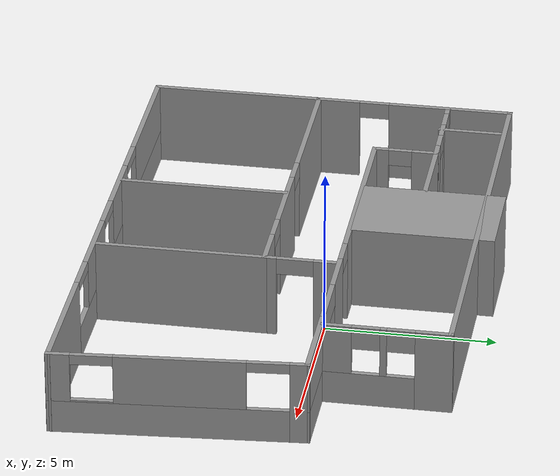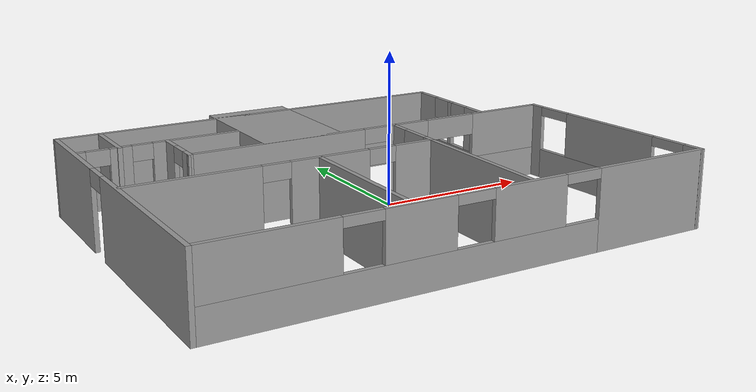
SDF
<?xml version='1.0'?>
<sdf version='1.6'>
  <model name='Building'>
    <pose frame=''>-1.32322 -1.01711 0 0 -0 0</pose>
    <link name='Wall_100'>
      <collision name='Wall_100_Collision'>
        <geometry>
          <box>
            <size>4.3 2.7 2.5</size>
          </box>
        </geometry>
        <pose frame=''>0 0 1.25 0 -0 0</pose>
      </collision>
      <visual name='Wall_100_Visual'>
        <pose frame=''>0 0 1.25 0 -0 0</pose>
        <geometry>
          <box>
            <size>4.3 2.7 2.5</size>
          </box>
        </geometry>
        <material>
          <script>
            <uri>file://media/materials/scripts/gazebo.material</uri>
            <name>Gazebo/Grey</name>
          </script>
          <ambient>1 1 1 1</ambient>
        </material>
        <meta>
          <layer>0</layer>
        </meta>
      </visual>
      <pose frame=''>-1.48764 3.58577 0 0 0 -1.5708</pose>
    </link>
    <link name='Wall_40'>
      <pose frame=''>-8.07936 -0.23025 0 0 0 -1.5708</pose>
      <visual name='Wall_40_Visual_0'>
        <pose frame=''>-3.61824 0 1.25 0 -0 0</pose>
        <geometry>
          <box>
            <size>3.76351 0.15 2.5</size>
          </box>
        </geometry>
        <material>
          <script>
            <uri>file://media/materials/scripts/gazebo.material</uri>
            <name>Gazebo/Grey</name>
          </script>
          <ambient>1 1 1 1</ambient>
        </material>
        <meta>
          <layer>0</layer>
        </meta>
      </visual>
      <collision name='Wall_40_Collision_0'>
        <geometry>
          <box>
            <size>3.76351 0.15 2.5</size>
          </box>
        </geometry>
        <pose frame=''>-3.61824 0 1.25 0 -0 0</pose>
      </collision>
      <visual name='Wall_40_Visual_1'>
        <pose frame=''>2.33175 0 1.25 0 -0 0</pose>
        <geometry>
          <box>
            <size>6.33649 0.15 2.5</size>
          </box>
        </geometry>
        <material>
          <script>
            <uri>file://media/materials/scripts/gazebo.material</uri>
            <name>Gazebo/Grey</name>
          </script>
          <ambient>1 1 1 1</ambient>
        </material>
        <meta>
          <layer>0</layer>
        </meta>
      </visual>
      <collision name='Wall_40_Collision_1'>
        <geometry>
          <box>
            <size>6.33649 0.15 2.5</size>
          </box>
        </geometry>
        <pose frame=''>2.33175 0 1.25 0 -0 0</pose>
      </collision>
      <visual name='Wall_40_Visual_2'>
        <pose frame=''>-1.28649 0 2.25 0 -0 0</pose>
        <geometry>
          <box>
            <size>0.9 0.15 0.5</size>
          </box>
        </geometry>
        <material>
          <script>
            <uri>file://media/materials/scripts/gazebo.material</uri>
            <name>Gazebo/Grey</name>
          </script>
          <ambient>1 1 1 1</ambient>
        </material>
        <meta>
          <layer>0</layer>
        </meta>
      </visual>
      <collision name='Wall_40_Collision_2'>
        <geometry>
          <box>
            <size>0.9 0.15 0.5</size>
          </box>
        </geometry>
        <pose frame=''>-1.28649 0 2.25 0 -0 0</pose>
      </collision>
    </link>
    <link name='Wall_47'>
      <collision name='Wall_47_Collision'>
        <geometry>
          <box>
            <size>13.5 0.15 2.5</size>
          </box>
        </geometry>
        <pose frame=''>0 0 1.25 0 -0 0</pose>
      </collision>
      <visual name='Wall_47_Visual'>
        <pose frame=''>0 0 1.25 0 -0 0</pose>
        <geometry>
          <box>
            <size>13.5 0.15 2.5</size>
          </box>
        </geometry>
        <material>
          <script>
            <uri>file://media/materials/scripts/gazebo.material</uri>
            <name>Gazebo/Grey</name>
          </script>
          <ambient>1 1 1 1</ambient>
        </material>
        <meta>
          <layer>0</layer>
        </meta>
      </visual>
      <pose frame=''>-1.40436 5.19475 0 0 -0 0</pose>
    </link>
    <link name='Wall_49'>
      <pose frame=''>5.27064 3.39475 0 0 0 -1.5708</pose>
      <visual name='Wall_49_Visual_0'>
        <pose frame=''>-1.33629 0 1.25 0 -0 0</pose>
        <geometry>
          <box>
            <size>1.07742 0.15 2.5</size>
          </box>
        </geometry>
        <material>
          <script>
            <uri>file://media/materials/scripts/gazebo.material</uri>
            <name>Gazebo/Grey</name>
          </script>
          <ambient>1 1 1 1</ambient>
        </material>
        <meta>
          <layer>0</layer>
        </meta>
      </visual>
      <collision name='Wall_49_Collision_0'>
        <geometry>
          <box>
            <size>1.07742 0.15 2.5</size>
          </box>
        </geometry>
        <pose frame=''>-1.33629 0 1.25 0 -0 0</pose>
      </collision>
      <visual name='Wall_49_Visual_1'>
        <pose frame=''>0.538709 0 0.5 0 -0 0</pose>
        <geometry>
          <box>
            <size>2.67258 0.15 1</size>
          </box>
        </geometry>
        <material>
          <script>
            <uri>file://media/materials/scripts/gazebo.material</uri>
            <name>Gazebo/Grey</name>
          </script>
          <ambient>1 1 1 1</ambient>
        </material>
        <meta>
          <layer>0</layer>
        </meta>
      </visual>
      <collision name='Wall_49_Collision_1'>
        <geometry>
          <box>
            <size>2.67258 0.15 1</size>
          </box>
        </geometry>
        <pose frame=''>0.538709 0 0.5 0 -0 0</pose>
      </collision>
      <visual name='Wall_49_Visual_2'>
        <pose frame=''>0.097651 0 1.75 0 -0 0</pose>
        <geometry>
          <box>
            <size>0.190465 0.15 1.5</size>
          </box>
        </geometry>
        <material>
          <script>
            <uri>file://media/materials/scripts/gazebo.material</uri>
            <name>Gazebo/Grey</name>
          </script>
          <ambient>1 1 1 1</ambient>
        </material>
        <meta>
          <layer>0</layer>
        </meta>
      </visual>
      <collision name='Wall_49_Collision_2'>
        <geometry>
          <box>
            <size>0.190465 0.15 1.5</size>
          </box>
        </geometry>
        <pose frame=''>0.097651 0 1.75 0 -0 0</pose>
      </collision>
      <visual name='Wall_49_Visual_3'>
        <pose frame=''>1.43394 0 1.75 0 -0 0</pose>
        <geometry>
          <box>
            <size>0.882117 0.15 1.5</size>
          </box>
        </geometry>
        <material>
          <script>
            <uri>file://media/materials/scripts/gazebo.material</uri>
            <name>Gazebo/Grey</name>
          </script>
          <ambient>1 1 1 1</ambient>
        </material>
        <meta>
          <layer>0</layer>
        </meta>
      </visual>
      <collision name='Wall_49_Collision_3'>
        <geometry>
          <box>
            <size>0.882117 0.15 1.5</size>
          </box>
        </geometry>
        <pose frame=''>1.43394 0 1.75 0 -0 0</pose>
      </collision>
      <visual name='Wall_49_Visual_4'>
        <pose frame=''>-0.397582 0 2.15 0 -0 0</pose>
        <geometry>
          <box>
            <size>0.8 0.15 0.7</size>
          </box>
        </geometry>
        <material>
          <script>
            <uri>file://media/materials/scripts/gazebo.material</uri>
            <name>Gazebo/Grey</name>
          </script>
          <ambient>1 1 1 1</ambient>
        </material>
        <meta>
          <layer>0</layer>
        </meta>
      </visual>
      <collision name='Wall_49_Collision_4'>
        <geometry>
          <box>
            <size>0.8 0.15 0.7</size>
          </box>
        </geometry>
        <pose frame=''>-0.397582 0 2.15 0 -0 0</pose>
      </collision>
      <visual name='Wall_49_Visual_5'>
        <pose frame=''>0.592883 0 2.15 0 -0 0</pose>
        <geometry>
          <box>
            <size>0.8 0.15 0.7</size>
          </box>
        </geometry>
        <material>
          <script>
            <uri>file://media/materials/scripts/gazebo.material</uri>
            <name>Gazebo/Grey</name>
          </script>
          <ambient>1 1 1 1</ambient>
        </material>
        <meta>
          <layer>0</layer>
        </meta>
      </visual>
      <collision name='Wall_49_Collision_5'>
        <geometry>
          <box>
            <size>0.8 0.15 0.7</size>
          </box>
        </geometry>
        <pose frame=''>0.592883 0 2.15 0 -0 0</pose>
      </collision>
    </link>
    <link name='Wall_54'>
      <pose frame=''>-0.002761 -5.65525 0 0 -0 3.14159</pose>
      <visual name='Wall_54_Visual_0'>
        <pose frame=''>-6.13829 0 1.25 0 -0 0</pose>
        <geometry>
          <box>
            <size>4.02662 0.15 2.5</size>
          </box>
        </geometry>
        <material>
          <script>
            <uri>file://media/materials/scripts/gazebo.material</uri>
            <name>Gazebo/Grey</name>
          </script>
          <ambient>1 1 1 1</ambient>
        </material>
        <meta>
          <layer>0</layer>
        </meta>
      </visual>
      <collision name='Wall_54_Collision_0'>
        <geometry>
          <box>
            <size>4.02662 0.15 2.5</size>
          </box>
        </geometry>
        <pose frame=''>-6.13829 0 1.25 0 -0 0</pose>
      </collision>
      <visual name='Wall_54_Visual_1'>
        <pose frame=''>2.01331 0 0.5 0 -0 0</pose>
        <geometry>
          <box>
            <size>12.2766 0.15 1</size>
          </box>
        </geometry>
        <material>
          <script>
            <uri>file://media/materials/scripts/gazebo.material</uri>
            <name>Gazebo/Grey</name>
          </script>
          <ambient>1 1 1 1</ambient>
        </material>
        <meta>
          <layer>0</layer>
        </meta>
      </visual>
      <collision name='Wall_54_Collision_1'>
        <geometry>
          <box>
            <size>12.2766 0.15 1</size>
          </box>
        </geometry>
        <pose frame=''>2.01331 0 0.5 0 -0 0</pose>
      </collision>
      <visual name='Wall_54_Visual_2'>
        <pose frame=''>-1.70444 0 1.75 0 -0 0</pose>
        <geometry>
          <box>
            <size>2.44108 0.15 1.5</size>
          </box>
        </geometry>
        <material>
          <script>
            <uri>file://media/materials/scripts/gazebo.material</uri>
            <name>Gazebo/Grey</name>
          </script>
          <ambient>1 1 1 1</ambient>
        </material>
        <meta>
          <layer>0</layer>
        </meta>
      </visual>
      <collision name='Wall_54_Collision_2'>
        <geometry>
          <box>
            <size>2.44108 0.15 1.5</size>
          </box>
        </geometry>
        <pose frame=''>-1.70444 0 1.75 0 -0 0</pose>
      </collision>
      <visual name='Wall_54_Visual_3'>
        <pose frame=''>1.81519 0 1.75 0 -0 0</pose>
        <geometry>
          <box>
            <size>2.19819 0.15 1.5</size>
          </box>
        </geometry>
        <material>
          <script>
            <uri>file://media/materials/scripts/gazebo.material</uri>
            <name>Gazebo/Grey</name>
          </script>
          <ambient>1 1 1 1</ambient>
        </material>
        <meta>
          <layer>0</layer>
        </meta>
      </visual>
      <collision name='Wall_54_Collision_3'>
        <geometry>
          <box>
            <size>2.19819 0.15 1.5</size>
          </box>
        </geometry>
        <pose frame=''>1.81519 0 1.75 0 -0 0</pose>
      </collision>
      <visual name='Wall_54_Visual_4'>
        <pose frame=''>6.13294 0 1.75 0 -0 0</pose>
        <geometry>
          <box>
            <size>4.03732 0.15 1.5</size>
          </box>
        </geometry>
        <material>
          <script>
            <uri>file://media/materials/scripts/gazebo.material</uri>
            <name>Gazebo/Grey</name>
          </script>
          <ambient>1 1 1 1</ambient>
        </material>
        <meta>
          <layer>0</layer>
        </meta>
      </visual>
      <collision name='Wall_54_Collision_4'>
        <geometry>
          <box>
            <size>4.03732 0.15 1.5</size>
          </box>
        </geometry>
        <pose frame=''>6.13294 0 1.75 0 -0 0</pose>
      </collision>
      <visual name='Wall_54_Visual_5'>
        <pose frame=''>-3.52498 0 2.35 0 -0 0</pose>
        <geometry>
          <box>
            <size>1.2 0.15 0.3</size>
          </box>
        </geometry>
        <material>
          <script>
            <uri>file://media/materials/scripts/gazebo.material</uri>
            <name>Gazebo/Grey</name>
          </script>
          <ambient>1 1 1 1</ambient>
        </material>
        <meta>
          <layer>0</layer>
        </meta>
      </visual>
      <collision name='Wall_54_Collision_5'>
        <geometry>
          <box>
            <size>1.2 0.15 0.3</size>
          </box>
        </geometry>
        <pose frame=''>-3.52498 0 2.35 0 -0 0</pose>
      </collision>
      <visual name='Wall_54_Visual_6'>
        <pose frame=''>0.116097 0 2.35 0 -0 0</pose>
        <geometry>
          <box>
            <size>1.2 0.15 0.3</size>
          </box>
        </geometry>
        <material>
          <script>
            <uri>file://media/materials/scripts/gazebo.material</uri>
            <name>Gazebo/Grey</name>
          </script>
          <ambient>1 1 1 1</ambient>
        </material>
        <meta>
          <layer>0</layer>
        </meta>
      </visual>
      <collision name='Wall_54_Collision_6'>
        <geometry>
          <box>
            <size>1.2 0.15 0.3</size>
          </box>
        </geometry>
        <pose frame=''>0.116097 0 2.35 0 -0 0</pose>
      </collision>
      <visual name='Wall_54_Visual_7'>
        <pose frame=''>3.51428 0 2.35 0 -0 0</pose>
        <geometry>
          <box>
            <size>1.2 0.15 0.3</size>
          </box>
        </geometry>
        <material>
          <script>
            <uri>file://media/materials/scripts/gazebo.material</uri>
            <name>Gazebo/Grey</name>
          </script>
          <ambient>1 1 1 1</ambient>
        </material>
        <meta>
          <layer>0</layer>
        </meta>
      </visual>
      <collision name='Wall_54_Collision_7'>
        <geometry>
          <box>
            <size>1.2 0.15 0.3</size>
          </box>
        </geometry>
        <pose frame=''>3.51428 0 2.35 0 -0 0</pose>
      </collision>
    </link>
    <link name='Wall_62'>
      <pose frame=''>-6.60165 3.32498 0 0 0 -3.13189</pose>
      <visual name='Wall_62_Visual_0'>
        <pose frame=''>-1.20265 0 1.25 0 -0 0</pose>
        <geometry>
          <box>
            <size>0.553995 0.15 2.5</size>
          </box>
        </geometry>
        <material>
          <script>
            <uri>file://media/materials/scripts/gazebo.material</uri>
            <name>Gazebo/Grey</name>
          </script>
          <ambient>1 1 1 1</ambient>
        </material>
        <meta>
          <layer>0</layer>
        </meta>
      </visual>
      <collision name='Wall_62_Collision_0'>
        <geometry>
          <box>
            <size>0.553995 0.15 2.5</size>
          </box>
        </geometry>
        <pose frame=''>-1.20265 0 1.25 0 -0 0</pose>
      </collision>
      <visual name='Wall_62_Visual_1'>
        <pose frame=''>0.073898 0 1.25 0 -0 0</pose>
        <geometry>
          <box>
            <size>0.684821 0.15 2.5</size>
          </box>
        </geometry>
        <material>
          <script>
            <uri>file://media/materials/scripts/gazebo.material</uri>
            <name>Gazebo/Grey</name>
          </script>
          <ambient>1 1 1 1</ambient>
        </material>
        <meta>
          <layer>0</layer>
        </meta>
      </visual>
      <collision name='Wall_62_Collision_1'>
        <geometry>
          <box>
            <size>0.684821 0.15 2.5</size>
          </box>
        </geometry>
        <pose frame=''>0.073898 0 1.25 0 -0 0</pose>
      </collision>
      <visual name='Wall_62_Visual_2'>
        <pose frame=''>1.31124 0 1.25 0 -0 0</pose>
        <geometry>
          <box>
            <size>0.336811 0.15 2.5</size>
          </box>
        </geometry>
        <material>
          <script>
            <uri>file://media/materials/scripts/gazebo.material</uri>
            <name>Gazebo/Grey</name>
          </script>
          <ambient>1 1 1 1</ambient>
        </material>
        <meta>
          <layer>0</layer>
        </meta>
      </visual>
      <collision name='Wall_62_Collision_2'>
        <geometry>
          <box>
            <size>0.336811 0.15 2.5</size>
          </box>
        </geometry>
        <pose frame=''>1.31124 0 1.25 0 -0 0</pose>
      </collision>
      <visual name='Wall_62_Visual_3'>
        <pose frame=''>-0.597083 0 2.25 0 -0 0</pose>
        <geometry>
          <box>
            <size>0.65714 0.15 0.5</size>
          </box>
        </geometry>
        <material>
          <script>
            <uri>file://media/materials/scripts/gazebo.material</uri>
            <name>Gazebo/Grey</name>
          </script>
          <ambient>1 1 1 1</ambient>
        </material>
        <meta>
          <layer>0</layer>
        </meta>
      </visual>
      <collision name='Wall_62_Collision_3'>
        <geometry>
          <box>
            <size>0.65714 0.15 0.5</size>
          </box>
        </geometry>
        <pose frame=''>-0.597083 0 2.25 0 -0 0</pose>
      </collision>
      <visual name='Wall_62_Visual_4'>
        <pose frame=''>0.779572 0 2.25 0 -0 0</pose>
        <geometry>
          <box>
            <size>0.726529 0.15 0.5</size>
          </box>
        </geometry>
        <material>
          <script>
            <uri>file://media/materials/scripts/gazebo.material</uri>
            <name>Gazebo/Grey</name>
          </script>
          <ambient>1 1 1 1</ambient>
        </material>
        <meta>
          <layer>0</layer>
        </meta>
      </visual>
      <collision name='Wall_62_Collision_4'>
        <geometry>
          <box>
            <size>0.726529 0.15 0.5</size>
          </box>
        </geometry>
        <pose frame=''>0.779572 0 2.25 0 -0 0</pose>
      </collision>
    </link>
    <link name='Wall_65'>
      <pose frame=''>-5.19707 2.41361 0 0 0 -1.5708</pose>
      <visual name='Wall_65_Visual_0'>
        <pose frame=''>-0.598058 0 1.25 0 -0 0</pose>
        <geometry>
          <box>
            <size>0.803885 0.15 2.5</size>
          </box>
        </geometry>
        <material>
          <script>
            <uri>file://media/materials/scripts/gazebo.material</uri>
            <name>Gazebo/Grey</name>
          </script>
          <ambient>1 1 1 1</ambient>
        </material>
        <meta>
          <layer>0</layer>
        </meta>
      </visual>
      <collision name='Wall_65_Collision_0'>
        <geometry>
          <box>
            <size>0.803885 0.15 2.5</size>
          </box>
        </geometry>
        <pose frame=''>-0.598058 0 1.25 0 -0 0</pose>
      </collision>
      <visual name='Wall_65_Visual_1'>
        <pose frame=''>0.747855 0 1.25 0 -0 0</pose>
        <geometry>
          <box>
            <size>0.504291 0.15 2.5</size>
          </box>
        </geometry>
        <material>
          <script>
            <uri>file://media/materials/scripts/gazebo.material</uri>
            <name>Gazebo/Grey</name>
          </script>
          <ambient>1 1 1 1</ambient>
        </material>
        <meta>
          <layer>0</layer>
        </meta>
      </visual>
      <collision name='Wall_65_Collision_1'>
        <geometry>
          <box>
            <size>0.504291 0.15 2.5</size>
          </box>
        </geometry>
        <pose frame=''>0.747855 0 1.25 0 -0 0</pose>
      </collision>
      <visual name='Wall_65_Visual_2'>
        <pose frame=''>0.149797 0 2.25 0 -0 0</pose>
        <geometry>
          <box>
            <size>0.691825 0.15 0.5</size>
          </box>
        </geometry>
        <material>
          <script>
            <uri>file://media/materials/scripts/gazebo.material</uri>
            <name>Gazebo/Grey</name>
          </script>
          <ambient>1 1 1 1</ambient>
        </material>
        <meta>
          <layer>0</layer>
        </meta>
      </visual>
      <collision name='Wall_65_Collision_2'>
        <geometry>
          <box>
            <size>0.691825 0.15 0.5</size>
          </box>
        </geometry>
        <pose frame=''>0.149797 0 2.25 0 -0 0</pose>
      </collision>
    </link>
    <link name='Wall_70'>
      <pose frame=''>7.7983 -2.06765 0 0 0 -1.49414</pose>
      <visual name='Wall_70_Visual_0'>
        <pose frame=''>-3.39164 0 1.25 0 -0 0</pose>
        <geometry>
          <box>
            <size>0.563048 0.15 2.5</size>
          </box>
        </geometry>
        <material>
          <script>
            <uri>file://media/materials/scripts/gazebo.material</uri>
            <name>Gazebo/Grey</name>
          </script>
          <ambient>1 1 1 1</ambient>
        </material>
        <meta>
          <layer>0</layer>
        </meta>
      </visual>
      <collision name='Wall_70_Collision_0'>
        <geometry>
          <box>
            <size>0.563048 0.15 2.5</size>
          </box>
        </geometry>
        <pose frame=''>-3.39164 0 1.25 0 -0 0</pose>
      </collision>
      <visual name='Wall_70_Visual_1'>
        <pose frame=''>0.281524 0 0.5 0 -0 0</pose>
        <geometry>
          <box>
            <size>6.78329 0.15 1</size>
          </box>
        </geometry>
        <material>
          <script>
            <uri>file://media/materials/scripts/gazebo.material</uri>
            <name>Gazebo/Grey</name>
          </script>
          <ambient>1 1 1 1</ambient>
        </material>
        <meta>
          <layer>0</layer>
        </meta>
      </visual>
      <collision name='Wall_70_Collision_1'>
        <geometry>
          <box>
            <size>6.78329 0.15 1</size>
          </box>
        </geometry>
        <pose frame=''>0.281524 0 0.5 0 -0 0</pose>
      </collision>
      <visual name='Wall_70_Visual_2'>
        <pose frame=''>-0.058851 0 1.75 0 -0 0</pose>
        <geometry>
          <box>
            <size>3.70254 0.15 1.5</size>
          </box>
        </geometry>
        <material>
          <script>
            <uri>file://media/materials/scripts/gazebo.material</uri>
            <name>Gazebo/Grey</name>
          </script>
          <ambient>1 1 1 1</ambient>
        </material>
        <meta>
          <layer>0</layer>
        </meta>
      </visual>
      <collision name='Wall_70_Collision_2'>
        <geometry>
          <box>
            <size>3.70254 0.15 1.5</size>
          </box>
        </geometry>
        <pose frame=''>-0.058851 0 1.75 0 -0 0</pose>
      </collision>
      <visual name='Wall_70_Visual_3'>
        <pose frame=''>3.33279 0 1.75 0 -0 0</pose>
        <geometry>
          <box>
            <size>0.68075 0.15 1.5</size>
          </box>
        </geometry>
        <material>
          <script>
            <uri>file://media/materials/scripts/gazebo.material</uri>
            <name>Gazebo/Grey</name>
          </script>
          <ambient>1 1 1 1</ambient>
        </material>
        <meta>
          <layer>0</layer>
        </meta>
      </visual>
      <collision name='Wall_70_Collision_3'>
        <geometry>
          <box>
            <size>0.68075 0.15 1.5</size>
          </box>
        </geometry>
        <pose frame=''>3.33279 0 1.75 0 -0 0</pose>
      </collision>
      <visual name='Wall_70_Visual_4'>
        <pose frame=''>2.39242 0 1 0 -0 0</pose>
        <geometry>
          <box>
            <size>1.2 0.15 0.1</size>
          </box>
        </geometry>
        <material>
          <script>
            <uri>file://media/materials/scripts/gazebo.material</uri>
            <name>Gazebo/Grey</name>
          </script>
          <ambient>1 1 1 1</ambient>
        </material>
        <meta>
          <layer>0</layer>
        </meta>
      </visual>
      <collision name='Wall_70_Collision_4'>
        <geometry>
          <box>
            <size>1.2 0.15 0.1</size>
          </box>
        </geometry>
        <pose frame=''>2.39242 0 1 0 -0 0</pose>
      </collision>
      <visual name='Wall_70_Visual_5'>
        <pose frame=''>-2.51012 0 2.35 0 -0 0</pose>
        <geometry>
          <box>
            <size>1.2 0.15 0.3</size>
          </box>
        </geometry>
        <material>
          <script>
            <uri>file://media/materials/scripts/gazebo.material</uri>
            <name>Gazebo/Grey</name>
          </script>
          <ambient>1 1 1 1</ambient>
        </material>
        <meta>
          <layer>0</layer>
        </meta>
      </visual>
      <collision name='Wall_70_Collision_5'>
        <geometry>
          <box>
            <size>1.2 0.15 0.3</size>
          </box>
        </geometry>
        <pose frame=''>-2.51012 0 2.35 0 -0 0</pose>
      </collision>
      <visual name='Wall_70_Visual_6'>
        <pose frame=''>2.39242 0 2.35 0 -0 0</pose>
        <geometry>
          <box>
            <size>1.2 0.15 0.3</size>
          </box>
        </geometry>
        <material>
          <script>
            <uri>file://media/materials/scripts/gazebo.material</uri>
            <name>Gazebo/Grey</name>
          </script>
          <ambient>1 1 1 1</ambient>
        </material>
        <meta>
          <layer>0</layer>
        </meta>
      </visual>
      <collision name='Wall_70_Collision_6'>
        <geometry>
          <box>
            <size>1.2 0.15 0.3</size>
          </box>
        </geometry>
        <pose frame=''>2.39242 0 2.35 0 -0 0</pose>
      </collision>
    </link>
    <link name='Wall_74'>
      <pose frame=''>-3.11721 -0.654815 0 0 -0 0</pose>
      <visual name='Wall_74_Visual_0'>
        <pose frame=''>-2.8962 0 1.25 0 -0 0</pose>
        <geometry>
          <box>
            <size>4.2076 0.15 2.5</size>
          </box>
        </geometry>
        <material>
          <script>
            <uri>file://media/materials/scripts/gazebo.material</uri>
            <name>Gazebo/Grey</name>
          </script>
          <ambient>1 1 1 1</ambient>
        </material>
        <meta>
          <layer>0</layer>
        </meta>
      </visual>
      <collision name='Wall_74_Collision_0'>
        <geometry>
          <box>
            <size>4.2076 0.15 2.5</size>
          </box>
        </geometry>
        <pose frame=''>-2.8962 0 1.25 0 -0 0</pose>
      </collision>
      <visual name='Wall_74_Visual_1'>
        <pose frame=''>1.40494 0 1.25 0 -0 0</pose>
        <geometry>
          <box>
            <size>2.59468 0.15 2.5</size>
          </box>
        </geometry>
        <material>
          <script>
            <uri>file://media/materials/scripts/gazebo.material</uri>
            <name>Gazebo/Grey</name>
          </script>
          <ambient>1 1 1 1</ambient>
        </material>
        <meta>
          <layer>0</layer>
        </meta>
      </visual>
      <collision name='Wall_74_Collision_1'>
        <geometry>
          <box>
            <size>2.59468 0.15 2.5</size>
          </box>
        </geometry>
        <pose frame=''>1.40494 0 1.25 0 -0 0</pose>
      </collision>
      <visual name='Wall_74_Visual_2'>
        <pose frame=''>4.30114 0 1.25 0 -0 0</pose>
        <geometry>
          <box>
            <size>1.39772 0.15 2.5</size>
          </box>
        </geometry>
        <material>
          <script>
            <uri>file://media/materials/scripts/gazebo.material</uri>
            <name>Gazebo/Grey</name>
          </script>
          <ambient>1 1 1 1</ambient>
        </material>
        <meta>
          <layer>0</layer>
        </meta>
      </visual>
      <collision name='Wall_74_Collision_2'>
        <geometry>
          <box>
            <size>1.39772 0.15 2.5</size>
          </box>
        </geometry>
        <pose frame=''>4.30114 0 1.25 0 -0 0</pose>
      </collision>
      <visual name='Wall_74_Visual_3'>
        <pose frame=''>-0.342396 0 2.25 0 -0 0</pose>
        <geometry>
          <box>
            <size>0.9 0.15 0.5</size>
          </box>
        </geometry>
        <material>
          <script>
            <uri>file://media/materials/scripts/gazebo.material</uri>
            <name>Gazebo/Grey</name>
          </script>
          <ambient>1 1 1 1</ambient>
        </material>
        <meta>
          <layer>0</layer>
        </meta>
      </visual>
      <collision name='Wall_74_Collision_3'>
        <geometry>
          <box>
            <size>0.9 0.15 0.5</size>
          </box>
        </geometry>
        <pose frame=''>-0.342396 0 2.25 0 -0 0</pose>
      </collision>
      <visual name='Wall_74_Visual_4'>
        <pose frame=''>3.15228 0 2.25 0 -0 0</pose>
        <geometry>
          <box>
            <size>0.9 0.15 0.5</size>
          </box>
        </geometry>
        <material>
          <script>
            <uri>file://media/materials/scripts/gazebo.material</uri>
            <name>Gazebo/Grey</name>
          </script>
          <ambient>1 1 1 1</ambient>
        </material>
        <meta>
          <layer>0</layer>
        </meta>
      </visual>
      <collision name='Wall_74_Collision_4'>
        <geometry>
          <box>
            <size>0.9 0.15 0.5</size>
          </box>
        </geometry>
        <pose frame=''>3.15228 0 2.25 0 -0 0</pose>
      </collision>
    </link>
    <link name='Wall_75'>
      <collision name='Wall_75_Collision'>
        <geometry>
          <box>
            <size>5 0.15 2.5</size>
          </box>
        </geometry>
        <pose frame=''>0 0 1.25 0 -0 0</pose>
      </collision>
      <visual name='Wall_75_Visual'>
        <pose frame=''>0 0 1.25 0 -0 0</pose>
        <geometry>
          <box>
            <size>5 0.15 2.5</size>
          </box>
        </geometry>
        <material>
          <script>
            <uri>file://media/materials/scripts/gazebo.material</uri>
            <name>Gazebo/Grey</name>
          </script>
          <ambient>1 1 1 1</ambient>
        </material>
        <meta>
          <layer>0</layer>
        </meta>
      </visual>
      <pose frame=''>1.80779 -3.07981 0 0 0 -1.5708</pose>
    </link>
    <link name='Wall_79'>
      <collision name='Wall_79_Collision'>
        <geometry>
          <box>
            <size>5 0.15 2.5</size>
          </box>
        </geometry>
        <pose frame=''>0 0 1.25 0 -0 0</pose>
      </collision>
      <visual name='Wall_79_Visual'>
        <pose frame=''>0 0 1.25 0 -0 0</pose>
        <geometry>
          <box>
            <size>5 0.15 2.5</size>
          </box>
        </geometry>
        <material>
          <script>
            <uri>file://media/materials/scripts/gazebo.material</uri>
            <name>Gazebo/Grey</name>
          </script>
          <ambient>1 1 1 1</ambient>
        </material>
        <meta>
          <layer>0</layer>
        </meta>
      </visual>
      <pose frame=''>-2.05138 -3.12608 0 0 0 -1.5708</pose>
    </link>
    <link name='Wall_83'>
      <collision name='Wall_83_Collision'>
        <geometry>
          <box>
            <size>2 0.15 2.5</size>
          </box>
        </geometry>
        <pose frame=''>0 0 1.25 0 -0 0</pose>
      </collision>
      <visual name='Wall_83_Visual'>
        <pose frame=''>0 0 1.25 0 -0 0</pose>
        <geometry>
          <box>
            <size>2 0.15 2.5</size>
          </box>
        </geometry>
        <material>
          <script>
            <uri>file://media/materials/scripts/gazebo.material</uri>
            <name>Gazebo/Grey</name>
          </script>
          <ambient>1 1 1 1</ambient>
        </material>
        <meta>
          <layer>0</layer>
        </meta>
      </visual>
      <pose frame=''>-6.72313 4.20134 0 0 0 -1.5708</pose>
    </link>
    <link name='Wall_85'>
      <collision name='Wall_85_Collision'>
        <geometry>
          <box>
            <size>2.5 0.15 2.5</size>
          </box>
        </geometry>
        <pose frame=''>0 0 1.25 0 -0 0</pose>
      </collision>
      <visual name='Wall_85_Visual'>
        <pose frame=''>0 0 1.25 0 -0 0</pose>
        <geometry>
          <box>
            <size>2.5 0.15 2.5</size>
          </box>
        </geometry>
        <material>
          <script>
            <uri>file://media/materials/scripts/gazebo.material</uri>
            <name>Gazebo/Grey</name>
          </script>
          <ambient>1 1 1 1</ambient>
        </material>
        <meta>
          <layer>0</layer>
        </meta>
      </visual>
      <pose frame=''>-4.02207 3.33861 0 0 -0 0</pose>
    </link>
    <link name='Wall_89'>
      <pose frame=''>1.80779 0.395185 0 0 -0 1.5708</pose>
      <visual name='Wall_89_Visual_0'>
        <pose frame=''>-0.9132 0 1.25 0 -0 0</pose>
        <geometry>
          <box>
            <size>0.423601 0.15 2.5</size>
          </box>
        </geometry>
        <material>
          <script>
            <uri>file://media/materials/scripts/gazebo.material</uri>
            <name>Gazebo/Grey</name>
          </script>
          <ambient>1 1 1 1</ambient>
        </material>
        <meta>
          <layer>0</layer>
        </meta>
      </visual>
      <collision name='Wall_89_Collision_0'>
        <geometry>
          <box>
            <size>0.423601 0.15 2.5</size>
          </box>
        </geometry>
        <pose frame=''>-0.9132 0 1.25 0 -0 0</pose>
      </collision>
      <visual name='Wall_89_Visual_1'>
        <pose frame=''>0.749251 0 1.25 0 -0 0</pose>
        <geometry>
          <box>
            <size>0.751499 0.15 2.5</size>
          </box>
        </geometry>
        <material>
          <script>
            <uri>file://media/materials/scripts/gazebo.material</uri>
            <name>Gazebo/Grey</name>
          </script>
          <ambient>1 1 1 1</ambient>
        </material>
        <meta>
          <layer>0</layer>
        </meta>
      </visual>
      <collision name='Wall_89_Collision_1'>
        <geometry>
          <box>
            <size>0.751499 0.15 2.5</size>
          </box>
        </geometry>
        <pose frame=''>0.749251 0 1.25 0 -0 0</pose>
      </collision>
      <visual name='Wall_89_Visual_2'>
        <pose frame=''>-0.163949 0 2.25 0 -0 0</pose>
        <geometry>
          <box>
            <size>1.0749 0.15 0.5</size>
          </box>
        </geometry>
        <material>
          <script>
            <uri>file://media/materials/scripts/gazebo.material</uri>
            <name>Gazebo/Grey</name>
          </script>
          <ambient>1 1 1 1</ambient>
        </material>
        <meta>
          <layer>0</layer>
        </meta>
      </visual>
      <collision name='Wall_89_Collision_2'>
        <geometry>
          <box>
            <size>1.0749 0.15 0.5</size>
          </box>
        </geometry>
        <pose frame=''>-0.163949 0 2.25 0 -0 0</pose>
      </collision>
    </link>
    <link name='Wall_97'>
      <pose frame=''>1.16285 1.50428 0 0 -0 0.002464</pose>
      <visual name='Wall_97_Visual_0'>
        <pose frame=''>-3.46225 0 1.25 0 -0 0</pose>
        <geometry>
          <box>
            <size>5.94536 0.15 2.5</size>
          </box>
        </geometry>
        <material>
          <script>
            <uri>file://media/materials/scripts/gazebo.material</uri>
            <name>Gazebo/Grey</name>
          </script>
          <ambient>1 1 1 1</ambient>
        </material>
        <meta>
          <layer>0</layer>
        </meta>
      </visual>
      <collision name='Wall_97_Collision_0'>
        <geometry>
          <box>
            <size>5.94536 0.15 2.5</size>
          </box>
        </geometry>
        <pose frame=''>-3.46225 0 1.25 0 -0 0</pose>
      </collision>
      <visual name='Wall_97_Visual_1'>
        <pose frame=''>1.15705 0 1.25 0 -0 0</pose>
        <geometry>
          <box>
            <size>1.49323 0.15 2.5</size>
          </box>
        </geometry>
        <material>
          <script>
            <uri>file://media/materials/scripts/gazebo.material</uri>
            <name>Gazebo/Grey</name>
          </script>
          <ambient>1 1 1 1</ambient>
        </material>
        <meta>
          <layer>0</layer>
        </meta>
      </visual>
      <collision name='Wall_97_Collision_1'>
        <geometry>
          <box>
            <size>1.49323 0.15 2.5</size>
          </box>
        </geometry>
        <pose frame=''>1.15705 0 1.25 0 -0 0</pose>
      </collision>
      <visual name='Wall_97_Visual_2'>
        <pose frame=''>4.1693 0 0.5 0 -0 0</pose>
        <geometry>
          <box>
            <size>4.53127 0.15 1</size>
          </box>
        </geometry>
        <material>
          <script>
            <uri>file://media/materials/scripts/gazebo.material</uri>
            <name>Gazebo/Grey</name>
          </script>
          <ambient>1 1 1 1</ambient>
        </material>
        <meta>
          <layer>0</layer>
        </meta>
      </visual>
      <collision name='Wall_97_Collision_2'>
        <geometry>
          <box>
            <size>4.53127 0.15 1</size>
          </box>
        </geometry>
        <pose frame=''>4.1693 0 0.5 0 -0 0</pose>
      </collision>
      <visual name='Wall_97_Visual_3'>
        <pose frame=''>5.0693 0 1.75 0 -0 0</pose>
        <geometry>
          <box>
            <size>2.73128 0.15 1.5</size>
          </box>
        </geometry>
        <material>
          <script>
            <uri>file://media/materials/scripts/gazebo.material</uri>
            <name>Gazebo/Grey</name>
          </script>
          <ambient>1 1 1 1</ambient>
        </material>
        <meta>
          <layer>0</layer>
        </meta>
      </visual>
      <collision name='Wall_97_Collision_3'>
        <geometry>
          <box>
            <size>2.73128 0.15 1.5</size>
          </box>
        </geometry>
        <pose frame=''>5.0693 0 1.75 0 -0 0</pose>
      </collision>
      <visual name='Wall_97_Visual_4'>
        <pose frame=''>2.80366 0 2.15 0 -0 0</pose>
        <geometry>
          <box>
            <size>1.8 0.15 0.7</size>
          </box>
        </geometry>
        <material>
          <script>
            <uri>file://media/materials/scripts/gazebo.material</uri>
            <name>Gazebo/Grey</name>
          </script>
          <ambient>1 1 1 1</ambient>
        </material>
        <meta>
          <layer>0</layer>
        </meta>
      </visual>
      <collision name='Wall_97_Collision_4'>
        <geometry>
          <box>
            <size>1.8 0.15 0.7</size>
          </box>
        </geometry>
        <pose frame=''>2.80366 0 2.15 0 -0 0</pose>
      </collision>
      <visual name='Wall_97_Visual_5'>
        <pose frame=''>-0.039569 0 2.25 0 -0 0</pose>
        <geometry>
          <box>
            <size>0.9 0.15 0.5</size>
          </box>
        </geometry>
        <material>
          <script>
            <uri>file://media/materials/scripts/gazebo.material</uri>
            <name>Gazebo/Grey</name>
          </script>
          <ambient>1 1 1 1</ambient>
        </material>
        <meta>
          <layer>0</layer>
        </meta>
      </visual>
      <collision name='Wall_97_Collision_5'>
        <geometry>
          <box>
            <size>0.9 0.15 0.5</size>
          </box>
        </geometry>
        <pose frame=''>-0.039569 0 2.25 0 -0 0</pose>
      </collision>
    </link>
    <static>1</static>
  </model>
</sdf>
